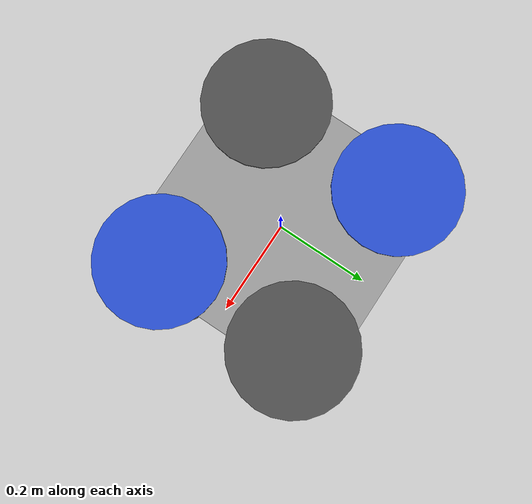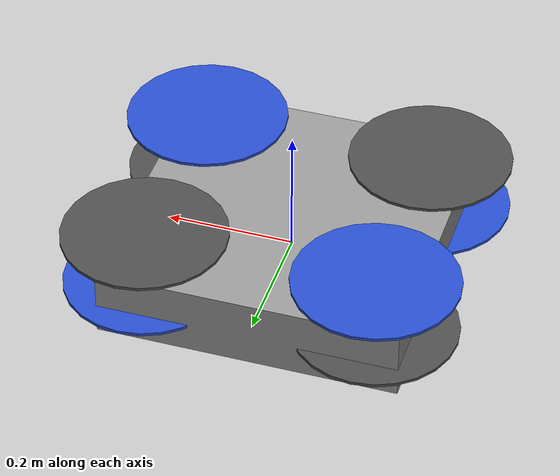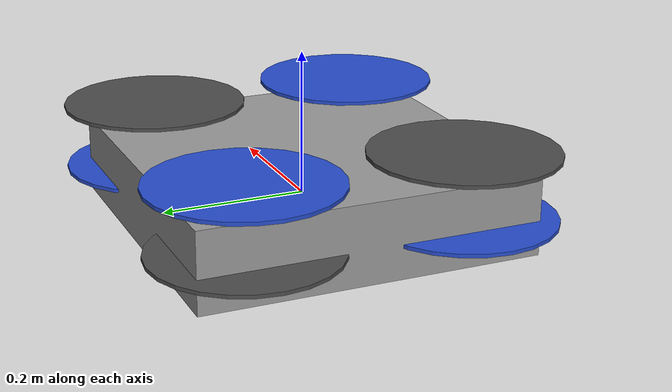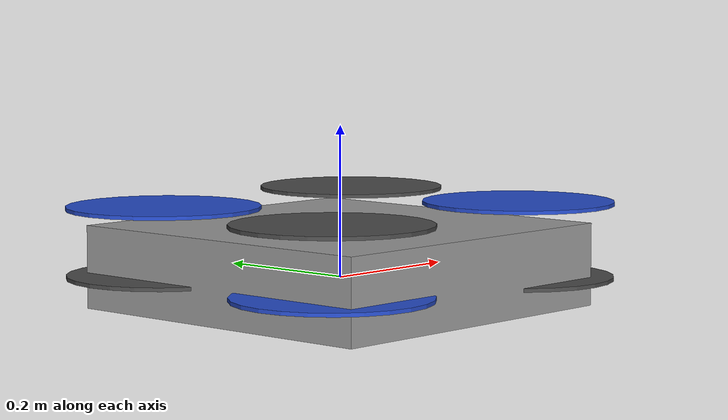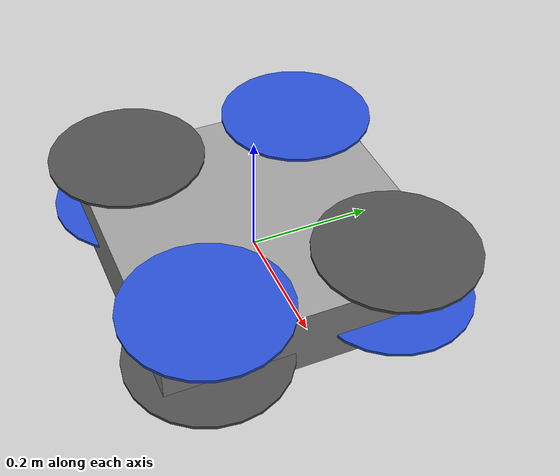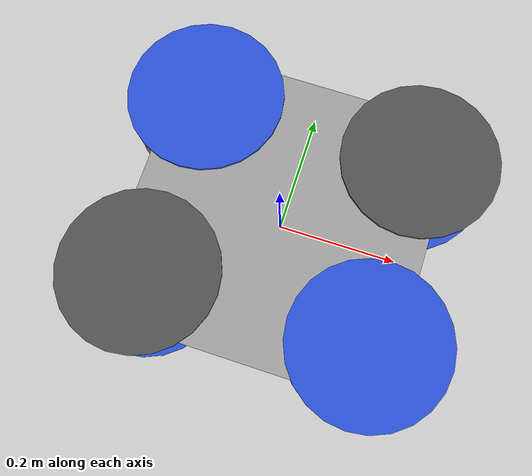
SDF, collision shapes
<?xml version="1.0" ?>
<sdf version="1.5">
  <model name='bumblebee_depth_camera'>
    <include>
      <uri>/home/ahal/catkin_ws/src/flipkart/models/bumblebee</uri>
    </include>

    <plugin name="p3d_base_controller" filename="libgazebo_ros_p3d.so">
      <alwaysOn>true</alwaysOn>
      <updateRate>50.0</updateRate>
      <bodyName>bumblebee::base_link</bodyName>
      <topicName>ground_truth/state</topicName>
      <gaussianNoise>0.01</gaussianNoise>
      <frameName>world</frameName>
      <xyzOffsets>0 0 0</xyzOffsets>
      <rpyOffsets>0 0 0</rpyOffsets>
    </plugin>

    <plugin name="r200" filename="librealsense_gazebo_plugin.so"/>
    <pose frame="">0 0 0.015 0 0 0</pose>
    <link name="link">
    <pose>0.1 0 0 0 0 0</pose>
      <inertial>
        <mass>0.0615752</mass>
        <inertia>
          <ixx>9.108e-05</ixx>
          <ixy>0</ixy>
          <ixz>0</ixz>
          <iyy>2.51e-06</iyy>
          <iyz>0</iyz>
          <izz>8.931e-05</izz>
        </inertia>
        <pose frame=''>0 0 0 0 0 0</pose>
      </inertial>
      <self_collide>0</self_collide>
      <enable_wind>0</enable_wind>
      <kinematic>0</kinematic>
      <gravity>1</gravity>
      <collision name='collision'>
        <laser_retro>0</laser_retro>
        <max_contacts>10</max_contacts>
        <pose frame=''>0 0 0 0 -0 0</pose>
        <geometry>
          <box>
            <size>0.0078 0.130 0.0192</size>
          </box>
        </geometry>
        <surface>
          <friction>
            <ode>
              <mu>1</mu>
              <mu2>1</mu2>
              <fdir1>0 0 0</fdir1>
              <slip1>0</slip1>
              <slip2>0</slip2>
            </ode>
            <torsional>
              <coefficient>1</coefficient>
              <patch_radius>0</patch_radius>
              <surface_radius>0</surface_radius>
              <use_patch_radius>1</use_patch_radius>
              <ode>
                <slip>0</slip>
              </ode>
            </torsional>
          </friction>
          <bounce>
            <restitution_coefficient>0</restitution_coefficient>
            <threshold>1e+06</threshold>
          </bounce>
          <contact>
            <collide_without_contact>0</collide_without_contact>
            <collide_without_contact_bitmask>1</collide_without_contact_bitmask>
            <collide_bitmask>1</collide_bitmask>
            <ode>
              <soft_cfm>0</soft_cfm>
              <soft_erp>0.2</soft_erp>
              <kp>1e+13</kp>
              <kd>1</kd>
              <max_vel>0.01</max_vel>
              <min_depth>0</min_depth>
            </ode>
            <bullet>
              <split_impulse>1</split_impulse>
              <split_impulse_penetration_threshold>-0.01</split_impulse_penetration_threshold>
              <soft_cfm>0</soft_cfm>
              <soft_erp>0.2</soft_erp>
              <kp>1e+13</kp>
              <kd>1</kd>
            </bullet>
          </contact>
        </surface>
      </collision>
      <sensor name="color" type="camera">
        <pose frame="">0 -0.046 0.004 0 0 0</pose>
        <camera name="__default__">
          <horizontal_fov>1.9</horizontal_fov>
          <image>
            <width>640</width>
            <height>480</height>
            <format>RGB_INT8</format>
          </image>
          <clip>
            <near>0.35</near>
            <far>100</far>
          </clip>
          <noise>
            <type>gaussian</type>
            <mean>0.0</mean>
            <stddev>0.007</stddev>
          </noise>
        </camera>
        <always_on>1</always_on>
        <update_rate>60</update_rate>
        <visualize>0</visualize>
      </sensor>
      <sensor name="ired1" type="camera">
        <pose frame="">0 -0.06 0.004 0 0 0</pose>
        <camera name="__default__">
          <horizontal_fov>1.9</horizontal_fov>
          <image>
            <width>640</width>
            <height>480</height>
            <format>L_INT8</format>
          </image>
          <clip>
            <near>0.35</near>
            <far>100</far>
          </clip>
          <noise>
            <type>gaussian</type>
            <mean>0.0</mean>
            <stddev>0.007</stddev>
          </noise>
        </camera>
        <always_on>1</always_on>
        <update_rate>60</update_rate>
        <visualize>0</visualize>
      </sensor>
      <sensor name="ired2" type="camera">
        <pose frame="">0 0.01 0.004 0 0 0</pose>
        <camera name="__default__">
          <horizontal_fov>1.9</horizontal_fov>
          <image>
            <width>640</width>
            <height>480</height>
            <format>L_INT8</format>
          </image>
          <clip>
            <near>0.35</near>
            <far>100</far>
          </clip>
          <noise>
            <type>gaussian</type>
            <mean>0.0</mean>
            <stddev>0.007</stddev>
          </noise>
        </camera>
        <always_on>1</always_on>
        <update_rate>60</update_rate>
        <visualize>0</visualize>
      </sensor>
      <sensor name="depth" type="depth">
        <pose frame="">0 -0.03 0.004 0 0 0</pose>
        <camera name="__default__">
          <horizontal_fov>1.9</horizontal_fov>
          <image>
            <width>640</width>
            <height>480</height>
          </image>
          <clip>
            <near>0.35</near>
            <far>100</far>
          </clip>
          <noise>
            <type>gaussian</type>
            <mean>0.0</mean>
            <stddev>0.007</stddev>
          </noise>
        </camera>
        <always_on>1</always_on>
        <update_rate>60</update_rate>
        <visualize>0</visualize>
      </sensor>
    </link>

    <joint name="rs_joint" type="revolute">
      <child>link</child>
      <parent>bumblebee::base_link</parent>
      <axis>
        <xyz>0 0 1</xyz>
        <limit>
          <upper>0</upper>
          <lower>0</lower>
        </limit>
      </axis>
    </joint>

  </model>
</sdf>

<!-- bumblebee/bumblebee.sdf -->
<sdf version='1.6'>
  <model name='bumblebee'>
    <link name='base_link'>
      <pose frame=''>0 0 0 0 -0 0</pose>
      <inertial>
        <pose frame=''>0 0 0 0 -0 0</pose>
        <mass>1.5</mass>
        <inertia>
          <ixx>0.029125</ixx>
          <ixy>0</ixy>
          <ixz>0</ixz>
          <iyy>0.029125</iyy>
          <iyz>0</iyz>
          <izz>0.055225</izz>
        </inertia>
      </inertial>
      <collision name='base_link_inertia_collision'>
        <pose frame=''>0 0 0 0 -0 0</pose>
        <geometry>
          <box>
            <size>0.47 0.47 0.11</size>
          </box>
        </geometry>
        <surface>
          <contact>
            <ode>
              <min_depth>0.001</min_depth>
              <max_vel>0</max_vel>
            </ode>
          </contact>
          <friction>
            <ode/>
          </friction>
        </surface>
      </collision>
      <visual name='base_link_inertia_visual'>
        <pose frame=''>0 0 0.015 1.57079632679 0 0</pose>
        <geometry>
          <mesh>
            <scale>0.001 0.001 0.001</scale>
            <uri>model://rotors_description/meshes/bumblebee.stl</uri>
          </mesh>

        </geometry>
        <material>
          <script>
            <name>Gazebo/Grey</name>
            <uri>file://media/materials/scripts/gazebo.material</uri>
          </script>
        </material>
      </visual>
      <gravity>1</gravity>
      <velocity_decay/>
    </link>
    <link name='/imu_link'>
      <pose frame=''>0 0 0 0 -0 0</pose>
      <inertial>
        <pose frame=''>0 0 0 0 -0 0</pose>
        <mass>0.015</mass>
        <inertia>
          <ixx>1e-05</ixx>
          <ixy>0</ixy>
          <ixz>0</ixz>
          <iyy>1e-05</iyy>
          <iyz>0</iyz>
          <izz>1e-05</izz>
        </inertia>
      </inertial>
    </link>
    <joint name='/imu_joint' type='revolute'>
      <child>/imu_link</child>
      <parent>base_link</parent>
      <axis>
        <xyz>1 0 0</xyz>
        <limit>
          <lower>0</lower>
          <upper>0</upper>
          <effort>0</effort>
          <velocity>0</velocity>
        </limit>
        <dynamics>
          <spring_reference>0</spring_reference>
          <spring_stiffness>0</spring_stiffness>
        </dynamics>
        <use_parent_model_frame>1</use_parent_model_frame>
      </axis>
    </joint>
    <link name='rotor_0'>
      <pose frame=''>0.1868 -0.15 0.08 0 -0 0</pose>
      <inertial>
        <pose frame=''>0 0 0 0 -0 0</pose>
        <mass>0.005</mass>
        <inertia>
          <ixx>9.75e-07</ixx>
          <ixy>0</ixy>
          <ixz>0</ixz>
          <iyy>0.000273104</iyy>
          <iyz>0</iyz>
          <izz>0.000274004</izz>
        </inertia>
      </inertial>
      <collision name='rotor_0_collision'>
        <pose frame=''>0 0 0 0 -0 0</pose>
        <geometry>
          <cylinder>
            <length>0.005</length>
            <radius>0.128</radius>
          </cylinder>
        </geometry>
        <surface>
          <contact>
            <ode/>
          </contact>
          <friction>
            <ode/>
          </friction>
        </surface>
      </collision>
      <visual name='rotor_0_visual'>
        <pose frame=''>0 0 0 0 0 0</pose>
        <geometry>
          <mesh>
            <scale>1 1 1</scale>
            <uri>model://rotors_description/meshes/iris_prop_ccw.dae</uri>
          </mesh>
        </geometry>
        <material>
          <script>
            <name>Gazebo/Blue</name>
            <uri>file://media/materials/scripts/gazebo.material</uri>
          </script>
        </material>
      </visual>
      <gravity>1</gravity>
      <velocity_decay/>
    </link>
    <joint name='rotor_0_joint' type='revolute'>
      <child>rotor_0</child>
      <parent>base_link</parent>
      <axis>
        <xyz>0 0 1</xyz>
        <limit>
          <lower>-1e+16</lower>
          <upper>1e+16</upper>
        </limit>
        <dynamics>
          <spring_reference>0</spring_reference>
          <spring_stiffness>0</spring_stiffness>
        </dynamics>
        <use_parent_model_frame>1</use_parent_model_frame>
      </axis>
    </joint>

    <link name='rotor_4'>
      <pose frame=''>0.1868 -0.15 -0.02 0 -0 0</pose>
      <inertial>
        <pose frame=''>0 0 0 0 -0 0</pose>
        <mass>0.005</mass>
        <inertia>
          <ixx>9.75e-07</ixx>
          <ixy>0</ixy>
          <ixz>0</ixz>
          <iyy>0.000273104</iyy>
          <iyz>0</iyz>
          <izz>0.000274004</izz>
        </inertia>
      </inertial>
      <collision name='rotor_4_collision'>
        <pose frame=''>0 0 0 3.14 -0 0</pose>
        <geometry>
          <cylinder>
            <length>0.005</length>
            <radius>0.128</radius>
          </cylinder>
        </geometry>
        <surface>
          <contact>
            <ode/>
          </contact>
          <friction>
            <ode/>
          </friction>
        </surface>
      </collision>
      <visual name='rotor_4_visual'>
        <pose frame=''>0 0 0 0 0 0</pose>
        <geometry>
          <mesh>
            <scale>1 1 1</scale>
            <uri>model://rotors_description/meshes/iris_prop_cw.dae</uri>
          </mesh>
        </geometry>
        <material>
          <script>
            <name>Gazebo/DarkGrey</name>
            <uri>file://media/materials/scripts/gazebo.material</uri>
          </script>
        </material>
      </visual>
      <gravity>1</gravity>
      <velocity_decay/>
    </link>
    <joint name='rotor_4_joint' type='revolute'>
      <child>rotor_4</child>
      <parent>base_link</parent>
      <axis>
        <xyz>0 0 1</xyz>
        <limit>
          <lower>-1e+16</lower>
          <upper>1e+16</upper>
        </limit>
        <dynamics>
          <spring_reference>0</spring_reference>
          <spring_stiffness>0</spring_stiffness>
        </dynamics>
        <use_parent_model_frame>1</use_parent_model_frame>
      </axis>
    </joint>

    <link name='rotor_1'>
      <pose frame=''>-0.1758 0.151 0.08 0 -0 0</pose>
      <inertial>
        <pose frame=''>0 0 0 0 -0 0</pose>
        <mass>0.005</mass>
        <inertia>
          <ixx>9.75e-07</ixx>
          <ixy>0</ixy>
          <ixz>0</ixz>
          <iyy>0.000273104</iyy>
          <iyz>0</iyz>
          <izz>0.000274004</izz>
        </inertia>
      </inertial>
      <collision name='rotor_1_collision'>
        <pose frame=''>0 0 0 0 -0 0</pose>
        <geometry>
          <cylinder>
            <length>0.005</length>
            <radius>0.128</radius>
          </cylinder>
        </geometry>
        <surface>
          <contact>
            <ode/>
          </contact>
          <friction>
            <ode/>
          </friction>
        </surface>
      </collision>
      <visual name='rotor_1_visual'>
        <pose frame=''>0 0 0 0 -0 0</pose>
        <geometry>
          <mesh>
            <scale>1 1 1</scale>
            <uri>model://rotors_description/meshes/iris_prop_ccw.dae
            </uri>
          </mesh>
        </geometry>
        <material>
          <script>
            <name>Gazebo/Blue</name>
            <uri>file://media/materials/scripts/gazebo.material</uri>
          </script>
        </material>
      </visual>
      <gravity>1</gravity>
      <velocity_decay/>
    </link>
    <joint name='rotor_1_joint' type='revolute'>
      <child>rotor_1</child>
      <parent>base_link</parent>
      <axis>
        <xyz>0 0 1</xyz>
        <limit>
          <lower>-1e+16</lower>
          <upper>1e+16</upper>
        </limit>
        <dynamics>
          <spring_reference>0</spring_reference>
          <spring_stiffness>0</spring_stiffness>
        </dynamics>
        <use_parent_model_frame>1</use_parent_model_frame>
      </axis>
    </joint>

    <link name='rotor_5'>
      <pose frame=''>-0.1758 0.151 -0.01 0 -0 0</pose>
      <inertial>
        <pose frame=''>0 0 0 0 -0 0</pose>
        <mass>0.005</mass>
        <inertia>
          <ixx>9.75e-07</ixx>
          <ixy>0</ixy>
          <ixz>0</ixz>
          <iyy>0.000273104</iyy>
          <iyz>0</iyz>
          <izz>0.000274004</izz>
        </inertia>
      </inertial>
      <collision name='rotor_5_collision'>
        <pose frame=''>0 0 0 0 -0 0</pose>
        <geometry>
          <cylinder>
            <length>0.005</length>
            <radius>0.128</radius>
          </cylinder>
        </geometry>
        <surface>
          <contact>
            <ode/>
          </contact>
          <friction>
            <ode/>
          </friction>
        </surface>
      </collision>
      <visual name='rotor_5_visual'>
        <pose frame=''>0 0 0 3.14 -0 0</pose>
        <geometry>
          <mesh>
            <scale>1 1 1</scale>
            <uri>model://rotors_description/meshes/iris_prop_cw.dae
            </uri>
          </mesh>
        </geometry>
        <material>
          <script>
            <name>Gazebo/DarkGrey</name>
            <uri>file://media/materials/scripts/gazebo.material</uri>
          </script>
        </material>
      </visual>
      <gravity>1</gravity>
      <velocity_decay/>
    </link>
    <joint name='rotor_5_joint' type='revolute'>
      <child>rotor_5</child>
      <parent>base_link</parent>
      <axis>
        <xyz>0 0 1</xyz>
        <limit>
          <lower>-1e+16</lower>
          <upper>1e+16</upper>
        </limit>
        <dynamics>
          <spring_reference>0</spring_reference>
          <spring_stiffness>0</spring_stiffness>
        </dynamics>
        <use_parent_model_frame>1</use_parent_model_frame>
      </axis>
    </joint>

    <link name='rotor_2'>
      <pose frame=''>0.1848 0.15 0.08 0 -0 0</pose>
      <inertial>
        <pose frame=''>0 0 0 0 -0 0</pose>
        <mass>0.005</mass>
        <inertia>
          <ixx>9.75e-07</ixx>
          <ixy>0</ixy>
          <ixz>0</ixz>
          <iyy>0.000273104</iyy>
          <iyz>0</iyz>
          <izz>0.000274004</izz>
        </inertia>
      </inertial>
      <collision name='rotor_2_collision'>
        <pose frame=''>0 0 0 0 -0 0</pose>
        <geometry>
          <cylinder>
            <length>0.005</length>
            <radius>0.128</radius>
          </cylinder>
        </geometry>
        <surface>
          <contact>
            <ode/>
          </contact>
          <friction>
            <ode/>
          </friction>
        </surface>
      </collision>
      <visual name='rotor_2_visual'>
        <pose frame=''>0 0 0 0 -0 0</pose>
        <geometry>
          <mesh>
            <scale>1 1 1</scale>
            <uri>model://rotors_description/meshes/iris_prop_cw.dae</uri>
          </mesh>
        </geometry>
        <material>
          <script>
            <name>Gazebo/DarkGrey</name>
            <uri>file://media/materials/scripts/gazebo.material</uri>
          </script>
        </material>
      </visual>
      <gravity>1</gravity>
      <velocity_decay/>
    </link>
    <joint name='rotor_2_joint' type='revolute'>
      <child>rotor_2</child>
      <parent>base_link</parent>
      <axis>
        <xyz>0 0 1</xyz>
        <limit>
          <lower>-1e+16</lower>
          <upper>1e+16</upper>
        </limit>
        <dynamics>
          <spring_reference>0</spring_reference>
          <spring_stiffness>0</spring_stiffness>
        </dynamics>
        <use_parent_model_frame>1</use_parent_model_frame>
      </axis>
    </joint>

    <link name='rotor_6'>
      <pose frame=''>0.1848 0.15 -0.01 0 -0 0</pose>
      <inertial>
        <pose frame=''>0 0 0 0 -0 0</pose>
        <mass>0.005</mass>
        <inertia>
          <ixx>9.75e-07</ixx>
          <ixy>0</ixy>
          <ixz>0</ixz>
          <iyy>0.000273104</iyy>
          <iyz>0</iyz>
          <izz>0.000274004</izz>
        </inertia>
      </inertial>
      <collision name='rotor_6_collision'>
        <pose frame=''>0 0 0 0 -0 0</pose>
        <geometry>
          <cylinder>
            <length>0.005</length>
            <radius>0.128</radius>
          </cylinder>
        </geometry>
        <surface>
          <contact>
            <ode/>
          </contact>
          <friction>
            <ode/>
          </friction>
        </surface>
      </collision>
      <visual name='rotor_6_visual'>
        <pose frame=''>0 0 0 3.14 -0 0</pose>
        <geometry>
          <mesh>
            <scale>1 1 1</scale>
            <uri>model://rotors_description/meshes/iris_prop_ccw.dae</uri>
          </mesh>
        </geometry>
        <material>
          <script>
            <name>Gazebo/Blue</name>
            <uri>file://media/materials/scripts/gazebo.material</uri>
          </script>
        </material>
      </visual>
      <gravity>1</gravity>
      <velocity_decay/>
    </link>
    <joint name='rotor_6_joint' type='revolute'>
      <child>rotor_6</child>
      <parent>base_link</parent>
      <axis>
        <xyz>0 0 1</xyz>
        <limit>
          <lower>-1e+16</lower>
          <upper>1e+16</upper>
        </limit>
        <dynamics>
          <spring_reference>0</spring_reference>
          <spring_stiffness>0</spring_stiffness>
        </dynamics>
        <use_parent_model_frame>1</use_parent_model_frame>
      </axis>
    </joint>

    <link name='rotor_3'>
      <pose frame=''>-0.1778 -0.151 0.08 0 -0 0</pose>
      <inertial>
        <pose frame=''>0 0 0 0 -0 0</pose>
        <mass>0.005</mass>
        <inertia>
          <ixx>9.75e-07</ixx>
          <ixy>0</ixy>
          <ixz>0</ixz>
          <iyy>0.000273104</iyy>
          <iyz>0</iyz>
          <izz>0.000274004</izz>
        </inertia>
      </inertial>
      <collision name='rotor_3_collision'>
        <pose frame=''>0 0 0 0 -0 0</pose>
        <geometry>
          <cylinder>
            <length>0.005</length>
            <radius>0.128</radius>
          </cylinder>
        </geometry>
        <surface>
          <contact>
            <ode/>
          </contact>
          <friction>
            <ode/>
          </friction>
        </surface>
      </collision>
      <visual name='rotor_3_visual'>
        <pose frame=''>0 0 0 0 -0 0</pose>
        <geometry>
          <mesh>
            <scale>1 1 1</scale>
            <uri>model://rotors_description/meshes/iris_prop_cw.dae</uri>
          </mesh>
        </geometry>
        <material>
          <script>
            <name>Gazebo/DarkGrey</name>
            <uri>file://media/materials/scripts/gazebo.material</uri>
          </script>
        </material>
      </visual>
      <gravity>1</gravity>
      <velocity_decay/>
    </link>
    <joint name='rotor_3_joint' type='revolute'>
      <child>rotor_3</child>
      <parent>base_link</parent>
      <axis>
        <xyz>0 0 1</xyz>
        <limit>
          <lower>-1e+16</lower>
          <upper>1e+16</upper>
        </limit>
        <dynamics>
          <spring_reference>0</spring_reference>
          <spring_stiffness>0</spring_stiffness>
        </dynamics>
        <use_parent_model_frame>1</use_parent_model_frame>
      </axis>
    </joint>

    <link name='rotor_7'>
      <pose frame=''>-0.1778 -0.151 -0.01 0 -0 0</pose>
      <inertial>
        <pose frame=''>0 0 0 0 -0 0</pose>
        <mass>0.005</mass>
        <inertia>
          <ixx>9.75e-07</ixx>
          <ixy>0</ixy>
          <ixz>0</ixz>
          <iyy>0.000273104</iyy>
          <iyz>0</iyz>
          <izz>0.000274004</izz>
        </inertia>
      </inertial>
      <collision name='rotor_7_collision'>
        <pose frame=''>0 0 0 0 -0 0</pose>
        <geometry>
          <cylinder>
            <length>0.005</length>
            <radius>0.128</radius>
          </cylinder>
        </geometry>
        <surface>
          <contact>
            <ode/>
          </contact>
          <friction>
            <ode/>
          </friction>
        </surface>
      </collision>
      <visual name='rotor_7_visual'>
        <pose frame=''>0 0 0 3.14 -0 0</pose>
        <geometry>
          <mesh>
            <scale>1 1 1</scale>
            <uri>model://rotors_description/meshes/iris_prop_ccw.dae</uri>
          </mesh>
        </geometry>
        <material>
          <script>
            <name>Gazebo/Blue</name>
            <uri>file://media/materials/scripts/gazebo.material</uri>
          </script>
        </material>
      </visual>
      <gravity>1</gravity>
      <velocity_decay/>
    </link>
    <joint name='rotor_7_joint' type='revolute'>
      <child>rotor_7</child>
      <parent>base_link</parent>
      <axis>
        <xyz>0 0 1</xyz>
        <limit>
          <lower>-1e+16</lower>
          <upper>1e+16</upper>
        </limit>
        <dynamics>
          <spring_reference>0</spring_reference>
          <spring_stiffness>0</spring_stiffness>
        </dynamics>
        <use_parent_model_frame>1</use_parent_model_frame>
      </axis>
    </joint>

    <plugin name='rosbag' filename='libgazebo_multirotor_base_plugin.so'>
      <robotNamespace/>
      <linkName>base_link</linkName>
      <rotorVelocitySlowdownSim>10</rotorVelocitySlowdownSim>
    </plugin>
    <plugin name='front_right_motor_model' filename='libgazebo_motor_model.so'>
      <robotNamespace/>
      <jointName>rotor_0_joint</jointName>
      <linkName>rotor_0</linkName>
      <turningDirection>ccw</turningDirection>
      <timeConstantUp>0.0125</timeConstantUp>
      <timeConstantDown>0.025</timeConstantDown>
      <maxRotVelocity>1100</maxRotVelocity>
      <motorConstant>8.54858e-06</motorConstant>
      <momentConstant>0.06</momentConstant>
      <commandSubTopic>/gazebo/command/motor_speed</commandSubTopic>
      <motorNumber>0</motorNumber>
      <rotorDragCoefficient>0.000175</rotorDragCoefficient>
      <rollingMomentCoefficient>1e-06</rollingMomentCoefficient>
      <motorSpeedPubTopic>/motor_speed/0</motorSpeedPubTopic>
      <rotorVelocitySlowdownSim>10</rotorVelocitySlowdownSim>
    </plugin>
    <plugin name='front_right_bottom_motor_model' filename='libgazebo_motor_model.so'>
      <robotNamespace/>
      <jointName>rotor_4_joint</jointName>
      <linkName>rotor_4</linkName>
      <turningDirection>cw</turningDirection>
      <timeConstantUp>0.0125</timeConstantUp>
      <timeConstantDown>0.025</timeConstantDown>
      <maxRotVelocity>1100</maxRotVelocity>
      <motorConstant>0</motorConstant>
      <momentConstant>0</momentConstant>
      <commandSubTopic>/gazebo/command/motor_speed</commandSubTopic>
      <motorNumber>0</motorNumber>
      <rotorDragCoefficient>0</rotorDragCoefficient>
      <rollingMomentCoefficient>0</rollingMomentCoefficient>
      <motorSpeedPubTopic>/motor_speed/0</motorSpeedPubTopic>
      <rotorVelocitySlowdownSim>10</rotorVelocitySlowdownSim>
    </plugin>
    <plugin name='back_left_motor_model' filename='libgazebo_motor_model.so'>
      <robotNamespace/>
      <jointName>rotor_1_joint</jointName>
      <linkName>rotor_1</linkName>
      <turningDirection>ccw</turningDirection>
      <timeConstantUp>0.0125</timeConstantUp>
      <timeConstantDown>0.025</timeConstantDown>
      <maxRotVelocity>1100</maxRotVelocity>
      <motorConstant>8.54858e-06</motorConstant>
      <momentConstant>0.06</momentConstant>
      <commandSubTopic>/gazebo/command/motor_speed</commandSubTopic>
      <motorNumber>1</motorNumber>
      <rotorDragCoefficient>0.000175</rotorDragCoefficient>
      <rollingMomentCoefficient>1e-06</rollingMomentCoefficient>
      <motorSpeedPubTopic>/motor_speed/1</motorSpeedPubTopic>
      <rotorVelocitySlowdownSim>10</rotorVelocitySlowdownSim>
    </plugin>
    <plugin name='back_left_bottom_motor_model' filename='libgazebo_motor_model.so'>
      <robotNamespace/>
      <jointName>rotor_5_joint</jointName>
      <linkName>rotor_5</linkName>
      <turningDirection>cw</turningDirection>
      <timeConstantUp>0.0125</timeConstantUp>
      <timeConstantDown>0.025</timeConstantDown>
      <maxRotVelocity>1100</maxRotVelocity>
      <motorConstant>0</motorConstant>
      <momentConstant>0</momentConstant>
      <commandSubTopic>/gazebo/command/motor_speed</commandSubTopic>
      <motorNumber>1</motorNumber>
      <rotorDragCoefficient>0</rotorDragCoefficient>
      <rollingMomentCoefficient>0</rollingMomentCoefficient>
      <motorSpeedPubTopic>/motor_speed/1</motorSpeedPubTopic>
      <rotorVelocitySlowdownSim>10</rotorVelocitySlowdownSim>
    </plugin>
    <plugin name='front_left_motor_model' filename='libgazebo_motor_model.so'>
      <robotNamespace/>
      <jointName>rotor_2_joint</jointName>
      <linkName>rotor_2</linkName>
      <turningDirection>cw</turningDirection>
      <timeConstantUp>0.0125</timeConstantUp>
      <timeConstantDown>0.025</timeConstantDown>
      <maxRotVelocity>1100</maxRotVelocity>
      <motorConstant>8.54858e-06</motorConstant>
      <momentConstant>0.06</momentConstant>
      <commandSubTopic>/gazebo/command/motor_speed</commandSubTopic>
      <motorNumber>2</motorNumber>
      <rotorDragCoefficient>0.000175</rotorDragCoefficient>
      <rollingMomentCoefficient>1e-06</rollingMomentCoefficient>
      <motorSpeedPubTopic>/motor_speed/2</motorSpeedPubTopic>
      <rotorVelocitySlowdownSim>10</rotorVelocitySlowdownSim>
    </plugin>
    <plugin name='front_left_bottom_motor_model' filename='libgazebo_motor_model.so'>
      <robotNamespace/>
      <jointName>rotor_6_joint</jointName>
      <linkName>rotor_6</linkName>
      <turningDirection>ccw</turningDirection>
      <timeConstantUp>0.0125</timeConstantUp>
      <timeConstantDown>0.025</timeConstantDown>
      <maxRotVelocity>1100</maxRotVelocity>
      <motorConstant>0</motorConstant>
      <momentConstant>0</momentConstant>
      <commandSubTopic>/gazebo/command/motor_speed</commandSubTopic>
      <motorNumber>2</motorNumber>
      <rotorDragCoefficient>0</rotorDragCoefficient>
      <rollingMomentCoefficient>0</rollingMomentCoefficient>
      <motorSpeedPubTopic>/motor_speed/2</motorSpeedPubTopic>
      <rotorVelocitySlowdownSim>10</rotorVelocitySlowdownSim>
    </plugin>
    <plugin name='back_right_motor_model' filename='libgazebo_motor_model.so'>
      <robotNamespace/>
      <jointName>rotor_3_joint</jointName>
      <linkName>rotor_3</linkName>
      <turningDirection>cw</turningDirection>
      <timeConstantUp>0.0125</timeConstantUp>
      <timeConstantDown>0.025</timeConstantDown>
      <maxRotVelocity>1100</maxRotVelocity>
      <motorConstant>8.54858e-06</motorConstant>
      <momentConstant>0.06</momentConstant>
      <commandSubTopic>/gazebo/command/motor_speed</commandSubTopic>
      <motorNumber>3</motorNumber>
      <rotorDragCoefficient>0.000175</rotorDragCoefficient>
      <rollingMomentCoefficient>1e-06</rollingMomentCoefficient>
      <motorSpeedPubTopic>/motor_speed/3</motorSpeedPubTopic>
      <rotorVelocitySlowdownSim>10</rotorVelocitySlowdownSim>
    </plugin>
    <plugin name='back_right_bottom_motor_model' filename='libgazebo_motor_model.so'>
      <robotNamespace/>
      <jointName>rotor_7_joint</jointName>
      <linkName>rotor_7</linkName>
      <turningDirection>ccw</turningDirection>
      <timeConstantUp>0.0125</timeConstantUp>
      <timeConstantDown>0.025</timeConstantDown>
      <maxRotVelocity>1100</maxRotVelocity>
      <motorConstant>0</motorConstant>
      <momentConstant>0</momentConstant>
      <commandSubTopic>/gazebo/command/motor_speed</commandSubTopic>
      <motorNumber>3</motorNumber>
      <rotorDragCoefficient>0</rotorDragCoefficient>
      <rollingMomentCoefficient>0</rollingMomentCoefficient>
      <motorSpeedPubTopic>/motor_speed/3</motorSpeedPubTopic>
      <rotorVelocitySlowdownSim>10</rotorVelocitySlowdownSim>
    </plugin>

    <model name='gps0'>
      <link name='link'>
        <pose>0 0 0 0 -0 0</pose>
        <inertial>
          <pose>0 0 0 0 -0 0</pose>
          <mass>0.01</mass>
          <inertia>
            <ixx>2.1733e-06</ixx>
            <ixy>0</ixy>
            <ixz>0</ixz>
            <iyy>2.1733e-06</iyy>
            <iyz>0</iyz>
            <izz>1.8e-07</izz>
          </inertia>
        </inertial>
        <visual name='visual'>
          <geometry>
            <cylinder>
              <radius>0.01</radius>
              <length>0.002</length>
            </cylinder>
          </geometry>
          <material>
            <script>
              <name>Gazebo/Black</name>
              <uri>__default__</uri>
            </script>
          </material>
        </visual>
        <sensor name='gps' type='gps'>
          <pose>0 0 0 0 -0 0</pose>
          <plugin name='gps_plugin' filename='libgazebo_gps_plugin.so'>
            <robotNamespace/>
            <gpsNoise>1</gpsNoise>
            <gpsXYRandomWalk>2.0</gpsXYRandomWalk>
            <gpsZRandomWalk>4.0</gpsZRandomWalk>
            <gpsXYNoiseDensity>0.0002</gpsXYNoiseDensity>
            <gpsZNoiseDensity>0.0004</gpsZNoiseDensity>
            <gpsVXYNoiseDensity>0.2</gpsVXYNoiseDensity>
            <gpsVZNoiseDensity>0.4</gpsVZNoiseDensity>
          </plugin>
        </sensor>
      </link>
    </model>
    <joint name='gps0_joint' type='fixed'>
      <parent>base_link</parent>
      <child>gps0::link</child>
    </joint>
    <plugin name='groundtruth_plugin' filename='libgazebo_groundtruth_plugin.so'>
      <robotNamespace/>
    </plugin>

    <plugin name='magnetometer_plugin' filename='libgazebo_magnetometer_plugin.so'>
      <robotNamespace/>
      <pubRate>100</pubRate>
      <noiseDensity>0.0004</noiseDensity>
      <randomWalk>6.4e-06</randomWalk>
      <biasCorrelationTime>600</biasCorrelationTime>
      <magTopic>/mag</magTopic>
    </plugin>
    <plugin name='barometer_plugin' filename='libgazebo_barometer_plugin.so'>
      <robotNamespace/>
      <pubRate>50</pubRate>
      <baroTopic>/baro</baroTopic>
    </plugin>
    <plugin name='mavlink_interface' filename='libgazebo_mavlink_interface.so'>
      <robotNamespace/>
      <imuSubTopic>/imu</imuSubTopic>
      <gpsSubTopic>/gps</gpsSubTopic>
      <magSubTopic>/mag</magSubTopic>
      <baroSubTopic>/baro</baroSubTopic>
      <mavlink_addr>INADDR_ANY</mavlink_addr>
      <mavlink_udp_port>14560</mavlink_udp_port>
      <mavlink_tcp_port>4560</mavlink_tcp_port>
      <serialEnabled>0</serialEnabled>
      <serialDevice>/dev/ttyACM0</serialDevice>
      <baudRate>921600</baudRate>
      <qgc_addr>INADDR_ANY</qgc_addr>
      <qgc_udp_port>14550</qgc_udp_port>
      <sdk_addr>INADDR_ANY</sdk_addr>
      <sdk_udp_port>14540</sdk_udp_port>
      <hil_mode>0</hil_mode>
      <hil_state_level>0</hil_state_level>
      <vehicle_is_tailsitter>0</vehicle_is_tailsitter>
      <send_vision_estimation>1</send_vision_estimation>
      <send_odometry>0</send_odometry>
      <enable_lockstep>1</enable_lockstep>
      <use_tcp>1</use_tcp>
      <motorSpeedCommandPubTopic>/gazebo/command/motor_speed</motorSpeedCommandPubTopic>
      <control_channels>
        <channel name='rotor1'>
          <input_index>0</input_index>
          <input_offset>0</input_offset>
          <input_scaling>1000</input_scaling>
          <zero_position_disarmed>0</zero_position_disarmed>
          <zero_position_armed>100</zero_position_armed>
          <joint_control_type>velocity</joint_control_type>
        </channel>
        <channel name='rotor2'>
          <input_index>1</input_index>
          <input_offset>0</input_offset>
          <input_scaling>1000</input_scaling>
          <zero_position_disarmed>0</zero_position_disarmed>
          <zero_position_armed>100</zero_position_armed>
          <joint_control_type>velocity</joint_control_type>
        </channel>
        <channel name='rotor3'>
          <input_index>2</input_index>
          <input_offset>0</input_offset>
          <input_scaling>1000</input_scaling>
          <zero_position_disarmed>0</zero_position_disarmed>
          <zero_position_armed>100</zero_position_armed>
          <joint_control_type>velocity</joint_control_type>
        </channel>
        <channel name='rotor4'>
          <input_index>3</input_index>
          <input_offset>0</input_offset>
          <input_scaling>1000</input_scaling>
          <zero_position_disarmed>0</zero_position_disarmed>
          <zero_position_armed>100</zero_position_armed>
          <joint_control_type>velocity</joint_control_type>
        </channel>
        <channel name='rotor5'>
          <input_index>4</input_index>
          <input_offset>1</input_offset>
          <input_scaling>324.6</input_scaling>
          <zero_position_disarmed>0</zero_position_disarmed>
          <zero_position_armed>0</zero_position_armed>
          <joint_control_type>velocity</joint_control_type>
          <joint_control_pid>
            <p>0.1</p>
            <i>0</i>
            <d>0</d>
            <iMax>0.0</iMax>
            <iMin>0.0</iMin>
            <cmdMax>2</cmdMax>
            <cmdMin>-2</cmdMin>
          </joint_control_pid>
          <joint_name>zephyr_delta_wing::propeller_joint</joint_name>
        </channel>
        <channel name='rotor6'>
          <input_index>5</input_index>
          <input_offset>0</input_offset>
          <input_scaling>0.524</input_scaling>
          <zero_position_disarmed>0</zero_position_disarmed>
          <zero_position_armed>0</zero_position_armed>
          <joint_control_type>position</joint_control_type>
          <joint_name>zephyr_delta_wing::flap_left_joint</joint_name>
          <joint_control_pid>
            <p>10.0</p>
            <i>0</i>
            <d>0</d>
            <iMax>0</iMax>
            <iMin>0</iMin>
            <cmdMax>20</cmdMax>
            <cmdMin>-20</cmdMin>
          </joint_control_pid>
        </channel>
        <channel name='rotor7'>
          <input_index>6</input_index>
          <input_offset>0</input_offset>
          <input_scaling>0.524</input_scaling>
          <zero_position_disarmed>0</zero_position_disarmed>
          <zero_position_armed>0</zero_position_armed>
          <joint_control_type>position</joint_control_type>
          <joint_name>zephyr_delta_wing::flap_right_joint</joint_name>
          <joint_control_pid>
            <p>10.0</p>
            <i>0</i>
            <d>0</d>
            <iMax>0</iMax>
            <iMin>0</iMin>
            <cmdMax>20</cmdMax>
            <cmdMin>-20</cmdMin>
          </joint_control_pid>
        </channel>
        <channel name='rotor8'>
          <input_index>7</input_index>
          <input_offset>0</input_offset>
          <input_scaling>0.524</input_scaling>
          <zero_position_disarmed>0</zero_position_disarmed>
          <zero_position_armed>0</zero_position_armed>
          <joint_control_type>position</joint_control_type>
        </channel>
      </control_channels>
    </plugin>
    <static>0</static>
    <plugin name='rotors_gazebo_imu_plugin' filename='libgazebo_imu_plugin.so'>
      <robotNamespace/>
      <linkName>/imu_link</linkName>
      <imuTopic>/imu</imuTopic>
      <gyroscopeNoiseDensity>0.00018665</gyroscopeNoiseDensity>
      <gyroscopeRandomWalk>3.8785e-05</gyroscopeRandomWalk>
      <gyroscopeBiasCorrelationTime>1000.0</gyroscopeBiasCorrelationTime>
      <gyroscopeTurnOnBiasSigma>0.0087</gyroscopeTurnOnBiasSigma>
      <accelerometerNoiseDensity>0.00186</accelerometerNoiseDensity>
      <accelerometerRandomWalk>0.006</accelerometerRandomWalk>
      <accelerometerBiasCorrelationTime>300.0</accelerometerBiasCorrelationTime>
      <accelerometerTurnOnBiasSigma>0.196</accelerometerTurnOnBiasSigma>
    </plugin>

    <!-- Publish Ground Truth To ROS -->
    <plugin name="p3d_base_controller" filename="libgazebo_ros_p3d.so">
      <alwaysOn>true</alwaysOn>
      <updateRate>50.0</updateRate>
      <bodyName>base_link</bodyName>
      <topicName>odometry</topicName>
      <gaussianNoise>0.01</gaussianNoise>
      <frameName>map</frameName>
      <xyzOffsets>0 0 0</xyzOffsets>
      <rpyOffsets>0 0 0</rpyOffsets>
    </plugin>
  </model>
</sdf>
